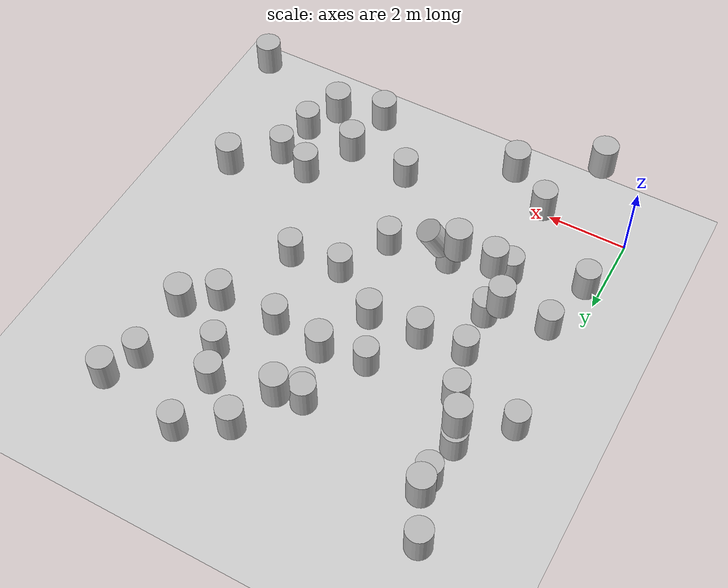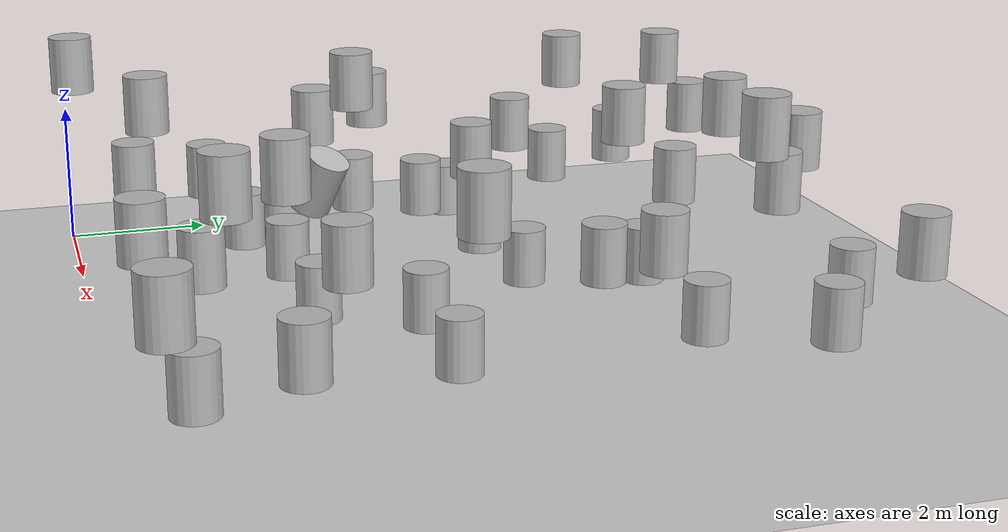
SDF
<sdf version="1.7">
 <world name="default">
  <light name="sun" type="directional">
   <pose>0 0 10 0 -0 0</pose>
   <diffuse>0.8 0.8 0.8 1</diffuse>
   <specular>0.2 0.2 0.2 1</specular>
   <attenuation>
    <range>1000</range>
    <constant>0.9</constant>
    <linear>0.01</linear>
    <quadratic>0.001</quadratic>
   </attenuation>
   <direction>-0.5 0.1 -0.9</direction>
   <spot><inner_angle>0</inner_angle><outer_angle>0</outer_angle><falloff>0</falloff></spot>
  </light>
  <model name="ground_plane">
   <static>1</static>
   <link name="link">
    <collision name="collision">
     <geometry><plane><normal>0 0 1</normal><size>100 100</size></plane></geometry>
     <surface><friction><ode><mu>100</mu><mu2>50</mu2></ode></friction></surface>
    </collision>
    <visual name="visual">
     <cast_shadows>0</cast_shadows>
     <geometry><plane><normal>0 0 1</normal><size>100 100</size></plane></geometry>
     <material>
      <script><uri>file://media/materials/scripts/gazebo.material</uri><name>Gazebo/Grey</name></script>
     </material>
    </visual>
   </link>
  </model>
  <gravity>0 0 -9.8</gravity>
  <magnetic_field>6e-06 2.3e-05 -4.2e-05</magnetic_field>
  <atmosphere type="adiabatic"/>
  <physics type="ode">
   <max_step_size>0.001</max_step_size>
   <real_time_factor>1</real_time_factor>
   <real_time_update_rate>1000</real_time_update_rate>
  </physics>
  <scene><ambient>0.4 0.4 0.4 1</ambient><background>0.7 0.7 0.7 1</background><shadows>1</shadows></scene>
  <spherical_coordinates>
   <surface_model>EARTH_WGS84</surface_model>
   <latitude_deg>0</latitude_deg>
   <longitude_deg>0</longitude_deg>
   <elevation>0</elevation>
   <heading_deg>0</heading_deg>
  </spherical_coordinates>
  <model name="obstacle_6">
   <link name="box_6">
    <inertial>
     <mass>1</mass>
     <inertia>
      <ixx>0.0741667</ixx>
      <ixy>0</ixy>
      <ixz>0</ixz>
      <iyy>0.0585417</iyy>
      <iyz>0</iyz>
      <izz>0.0260417</izz>
     </inertia>
    </inertial>
    <collision name="box_6_collision">
     <geometry><cylinder><length>0.8</length><radius>0.3</radius></cylinder></geometry>
     <surface>
      <contact><ode><kp>100000</kp><kd>100000</kd></ode></contact>
      <friction><ode><mu>0.1</mu><mu2>0.1</mu2><fdir1>1 0 0</fdir1></ode></friction>
     </surface>
    </collision>
    <visual name="box_6_visual">
     <geometry><cylinder><length>0.8</length><radius>0.3</radius></cylinder></geometry>
    </visual>
    <gravity>0</gravity>
   </link>
   <pose>2.10475 3.37825 2.18149 0 -0 0</pose>
  </model>
  <model name="obstacle_26">
   <link name="box_26">
    <inertial>
     <mass>1</mass>
     <inertia>
      <ixx>0.0741667</ixx>
      <ixy>0</ixy>
      <ixz>0</ixz>
      <iyy>0.0585417</iyy>
      <iyz>0</iyz>
      <izz>0.0260417</izz>
     </inertia>
    </inertial>
    <collision name="box_26_collision">
     <geometry><cylinder><length>0.8</length><radius>0.3</radius></cylinder></geometry>
     <surface>
      <contact><ode><kp>100000</kp><kd>100000</kd></ode></contact>
      <friction><ode><mu>0.1</mu><mu2>0.1</mu2><fdir1>1 0 0</fdir1></ode></friction>
     </surface>
    </collision>
    <visual name="box_26_visual">
     <geometry><cylinder><length>0.8</length><radius>0.3</radius></cylinder></geometry>
    </visual>
    <gravity>0</gravity>
   </link>
   <pose>0.901661 9.26718 2.48061 0 -0 0</pose>
  </model>
  <model name="obstacle_25">
   <link name="box_25">
    <inertial>
     <mass>1</mass>
     <inertia>
      <ixx>0.0741667</ixx>
      <ixy>0</ixy>
      <ixz>0</ixz>
      <iyy>0.0585417</iyy>
      <iyz>0</iyz>
      <izz>0.0260417</izz>
     </inertia>
    </inertial>
    <collision name="box_25_collision">
     <geometry><cylinder><length>0.8</length><radius>0.3</radius></cylinder></geometry>
     <surface>
      <contact><ode><kp>100000</kp><kd>100000</kd></ode></contact>
      <friction><ode><mu>0.1</mu><mu2>0.1</mu2><fdir1>1 0 0</fdir1></ode></friction>
     </surface>
    </collision>
    <visual name="box_25_visual">
     <geometry><cylinder><length>0.8</length><radius>0.3</radius></cylinder></geometry>
    </visual>
    <gravity>0</gravity>
   </link>
   <pose>7.25111 1.34775 2.71773 0 -0 0</pose>
  </model>
  <model name="obstacle_8">
   <link name="box_8">
    <inertial>
     <mass>1</mass>
     <inertia>
      <ixx>0.0741667</ixx>
      <ixy>0</ixy>
      <ixz>0</ixz>
      <iyy>0.0585417</iyy>
      <iyz>0</iyz>
      <izz>0.0260417</izz>
     </inertia>
    </inertial>
    <collision name="box_8_collision">
     <geometry><cylinder><length>0.8</length><radius>0.3</radius></cylinder></geometry>
     <surface>
      <contact><ode><kp>100000</kp><kd>100000</kd></ode></contact>
      <friction><ode><mu>0.1</mu><mu2>0.1</mu2><fdir1>1 0 0</fdir1></ode></friction>
     </surface>
    </collision>
    <visual name="box_8_visual">
     <geometry><cylinder><length>0.8</length><radius>0.3</radius></cylinder></geometry>
    </visual>
    <gravity>0</gravity>
   </link>
   <pose>5.08674 9.62647 2.12254 0 -0 0</pose>
  </model>
  <model name="obstacle_42">
   <link name="box_42">
    <inertial>
     <mass>1</mass>
     <inertia>
      <ixx>0.0741667</ixx>
      <ixy>0</ixy>
      <ixz>0</ixz>
      <iyy>0.0585417</iyy>
      <iyz>0</iyz>
      <izz>0.0260417</izz>
     </inertia>
    </inertial>
    <collision name="box_42_collision">
     <geometry><cylinder><length>0.8</length><radius>0.3</radius></cylinder></geometry>
     <surface>
      <contact><ode><kp>100000</kp><kd>100000</kd></ode></contact>
      <friction><ode><mu>0.1</mu><mu2>0.1</mu2><fdir1>1 0 0</fdir1></ode></friction>
     </surface>
    </collision>
    <visual name="box_42_visual">
     <geometry><cylinder><length>0.8</length><radius>0.3</radius></cylinder></geometry>
    </visual>
    <gravity>0</gravity>
   </link>
   <pose>1.96257 3.98736 1.11051 3.9e-05 6.6e-05 0.00014</pose>
  </model>
  <model name="obstacle_7">
   <link name="box_7">
    <inertial>
     <mass>1</mass>
     <inertia>
      <ixx>0.0741667</ixx>
      <ixy>0</ixy>
      <ixz>0</ixz>
      <iyy>0.0585417</iyy>
      <iyz>0</iyz>
      <izz>0.0260417</izz>
     </inertia>
    </inertial>
    <collision name="box_7_collision">
     <geometry><cylinder><length>0.8</length><radius>0.3</radius></cylinder></geometry>
     <surface>
      <contact><ode><kp>100000</kp><kd>100000</kd></ode></contact>
      <friction><ode><mu>0.1</mu><mu2>0.1</mu2><fdir1>1 0 0</fdir1></ode></friction>
     </surface>
    </collision>
    <visual name="box_7_visual">
     <geometry><cylinder><length>0.8</length><radius>0.3</radius></cylinder></geometry>
    </visual>
    <gravity>0</gravity>
   </link>
   <pose>7.27072 6.72703 1.57818 0 -0 0</pose>
  </model>
  <model name="obstacle_32">
   <link name="box_32">
    <inertial>
     <mass>1</mass>
     <inertia>
      <ixx>0.0741667</ixx>
      <ixy>0</ixy>
      <ixz>0</ixz>
      <iyy>0.0585417</iyy>
      <iyz>0</iyz>
      <izz>0.0260417</izz>
     </inertia>
    </inertial>
    <collision name="box_32_collision">
     <geometry><cylinder><length>0.8</length><radius>0.3</radius></cylinder></geometry>
     <surface>
      <contact><ode><kp>100000</kp><kd>100000</kd></ode></contact>
      <friction><ode><mu>0.1</mu><mu2>0.1</mu2><fdir1>1 0 0</fdir1></ode></friction>
     </surface>
    </collision>
    <visual name="box_32_visual">
     <geometry><cylinder><length>0.8</length><radius>0.3</radius></cylinder></geometry>
    </visual>
    <gravity>0</gravity>
   </link>
   <pose>2.73809 0.948197 2.65715 0 -0 0</pose>
  </model>
  <model name="obstacle_34">
   <link name="box_34">
    <inertial>
     <mass>1</mass>
     <inertia>
      <ixx>0.0741667</ixx>
      <ixy>0</ixy>
      <ixz>0</ixz>
      <iyy>0.0585417</iyy>
      <iyz>0</iyz>
      <izz>0.0260417</izz>
     </inertia>
    </inertial>
    <collision name="box_34_collision">
     <geometry><cylinder><length>0.8</length><radius>0.3</radius></cylinder></geometry>
     <surface>
      <contact><ode><kp>100000</kp><kd>100000</kd></ode></contact>
      <friction><ode><mu>0.1</mu><mu2>0.1</mu2><fdir1>1 0 0</fdir1></ode></friction>
     </surface>
    </collision>
    <visual name="box_34_visual">
     <geometry><cylinder><length>0.8</length><radius>0.3</radius></cylinder></geometry>
    </visual>
    <gravity>0</gravity>
   </link>
   <pose>7.09612 7.40446 0.550759 0 -0 0</pose>
  </model>
  <model name="obstacle_11">
   <link name="box_11">
    <inertial>
     <mass>1</mass>
     <inertia>
      <ixx>0.0741667</ixx>
      <ixy>0</ixy>
      <ixz>0</ixz>
      <iyy>0.0585417</iyy>
      <iyz>0</iyz>
      <izz>0.0260417</izz>
     </inertia>
    </inertial>
    <collision name="box_11_collision">
     <geometry><cylinder><length>0.8</length><radius>0.3</radius></cylinder></geometry>
     <surface>
      <contact><ode><kp>100000</kp><kd>100000</kd></ode></contact>
      <friction><ode><mu>0.1</mu><mu2>0.1</mu2><fdir1>1 0 0</fdir1></ode></friction>
     </surface>
    </collision>
    <visual name="box_11_visual">
     <geometry><cylinder><length>0.8</length><radius>0.3</radius></cylinder></geometry>
    </visual>
    <gravity>0</gravity>
   </link>
   <pose>6.40046 2.19597 2.63029 0 -0 0</pose>
  </model>
  <model name="obstacle_35">
   <link name="box_35">
    <inertial>
     <mass>1</mass>
     <inertia>
      <ixx>0.0741667</ixx>
      <ixy>0</ixy>
      <ixz>0</ixz>
      <iyy>0.0585417</iyy>
      <iyz>0</iyz>
      <izz>0.0260417</izz>
     </inertia>
    </inertial>
    <collision name="box_35_collision">
     <geometry><cylinder><length>0.8</length><radius>0.3</radius></cylinder></geometry>
     <surface>
      <contact><ode><kp>100000</kp><kd>100000</kd></ode></contact>
      <friction><ode><mu>0.1</mu><mu2>0.1</mu2><fdir1>1 0 0</fdir1></ode></friction>
     </surface>
    </collision>
    <visual name="box_35_visual">
     <geometry><cylinder><length>0.8</length><radius>0.3</radius></cylinder></geometry>
    </visual>
    <gravity>0</gravity>
   </link>
   <pose>1.93122 5.03207 0.959074 0 -0 0</pose>
  </model>
  <model name="obstacle_27">
   <link name="box_27">
    <inertial>
     <mass>1</mass>
     <inertia>
      <ixx>0.0741667</ixx>
      <ixy>0</ixy>
      <ixz>0</ixz>
      <iyy>0.0585417</iyy>
      <iyz>0</iyz>
      <izz>0.0260417</izz>
     </inertia>
    </inertial>
    <collision name="box_27_collision">
     <geometry><cylinder><length>0.8</length><radius>0.3</radius></cylinder></geometry>
     <surface>
      <contact><ode><kp>100000</kp><kd>100000</kd></ode></contact>
      <friction><ode><mu>0.1</mu><mu2>0.1</mu2><fdir1>1 0 0</fdir1></ode></friction>
     </surface>
    </collision>
    <visual name="box_27_visual">
     <geometry><cylinder><length>0.8</length><radius>0.3</radius></cylinder></geometry>
    </visual>
    <gravity>0</gravity>
   </link>
   <pose>1.43571 6.58573 1.70622 0 -0 0</pose>
  </model>
  <model name="obstacle_15">
   <link name="box_15">
    <inertial>
     <mass>1</mass>
     <inertia>
      <ixx>0.0741667</ixx>
      <ixy>0</ixy>
      <ixz>0</ixz>
      <iyy>0.0585417</iyy>
      <iyz>0</iyz>
      <izz>0.0260417</izz>
     </inertia>
    </inertial>
    <collision name="box_15_collision">
     <geometry><cylinder><length>0.8</length><radius>0.3</radius></cylinder></geometry>
     <surface>
      <contact><ode><kp>100000</kp><kd>100000</kd></ode></contact>
      <friction><ode><mu>0.1</mu><mu2>0.1</mu2><fdir1>1 0 0</fdir1></ode></friction>
     </surface>
    </collision>
    <visual name="box_15_visual">
     <geometry><cylinder><length>0.8</length><radius>0.3</radius></cylinder></geometry>
    </visual>
    <gravity>0</gravity>
   </link>
   <pose>1.13226 8.38937 1.33062 0 -0 0</pose>
  </model>
  <model name="obstacle_48">
   <link name="box_48">
    <inertial>
     <mass>1</mass>
     <inertia>
      <ixx>0.0741667</ixx>
      <ixy>0</ixy>
      <ixz>0</ixz>
      <iyy>0.0585417</iyy>
      <iyz>0</iyz>
      <izz>0.0260417</izz>
     </inertia>
    </inertial>
    <collision name="box_48_collision">
     <geometry><cylinder><length>0.8</length><radius>0.3</radius></cylinder></geometry>
     <surface>
      <contact><ode><kp>100000</kp><kd>100000</kd></ode></contact>
      <friction><ode><mu>0.1</mu><mu2>0.1</mu2><fdir1>1 0 0</fdir1></ode></friction>
     </surface>
    </collision>
    <visual name="box_48_visual">
     <geometry><cylinder><length>0.8</length><radius>0.3</radius></cylinder></geometry>
    </visual>
    <gravity>0</gravity>
   </link>
   <pose>2.04117 2.34147 0.695862 0 -0 0</pose>
  </model>
  <model name="obstacle_41">
   <link name="box_41">
    <inertial>
     <mass>1</mass>
     <inertia>
      <ixx>0.0741667</ixx>
      <ixy>0</ixy>
      <ixz>0</ixz>
      <iyy>0.0585417</iyy>
      <iyz>0</iyz>
      <izz>0.0260417</izz>
     </inertia>
    </inertial>
    <collision name="box_41_collision">
     <geometry><cylinder><length>0.8</length><radius>0.3</radius></cylinder></geometry>
     <surface>
      <contact><ode><kp>100000</kp><kd>100000</kd></ode></contact>
      <friction><ode><mu>0.1</mu><mu2>0.1</mu2><fdir1>1 0 0</fdir1></ode></friction>
     </surface>
    </collision>
    <visual name="box_41_visual">
     <geometry><cylinder><length>0.8</length><radius>0.3</radius></cylinder></geometry>
    </visual>
    <gravity>0</gravity>
   </link>
   <pose>1.98044 0.803897 1.53277 0 -0 0</pose>
  </model>
  <model name="obstacle_49">
   <link name="box_49">
    <inertial>
     <mass>1</mass>
     <inertia>
      <ixx>0.0741667</ixx>
      <ixy>0</ixy>
      <ixz>0</ixz>
      <iyy>0.0585417</iyy>
      <iyz>0</iyz>
      <izz>0.0260417</izz>
     </inertia>
    </inertial>
    <collision name="box_49_collision">
     <geometry><cylinder><length>0.8</length><radius>0.3</radius></cylinder></geometry>
     <surface>
      <contact><ode><kp>100000</kp><kd>100000</kd></ode></contact>
      <friction><ode><mu>0.1</mu><mu2>0.1</mu2><fdir1>1 0 0</fdir1></ode></friction>
     </surface>
    </collision>
    <visual name="box_49_visual">
     <geometry><cylinder><length>0.8</length><radius>0.3</radius></cylinder></geometry>
    </visual>
    <gravity>0</gravity>
   </link>
   <pose>8.34989 9.68227 1.61921 0 -0 0</pose>
  </model>
  <model name="obstacle_16">
   <link name="box_16">
    <inertial>
     <mass>1</mass>
     <inertia>
      <ixx>0.0741667</ixx>
      <ixy>0</ixy>
      <ixz>0</ixz>
      <iyy>0.0585417</iyy>
      <iyz>0</iyz>
      <izz>0.0260417</izz>
     </inertia>
    </inertial>
    <collision name="box_16_collision">
     <geometry><cylinder><length>0.8</length><radius>0.3</radius></cylinder></geometry>
     <surface>
      <contact><ode><kp>100000</kp><kd>100000</kd></ode></contact>
      <friction><ode><mu>0.1</mu><mu2>0.1</mu2><fdir1>1 0 0</fdir1></ode></friction>
     </surface>
    </collision>
    <visual name="box_16_visual">
     <geometry><cylinder><length>0.8</length><radius>0.3</radius></cylinder></geometry>
    </visual>
    <gravity>0</gravity>
   </link>
   <pose>8.6597 3.97956 2.70515 0 -0 0</pose>
  </model>
  <model name="obstacle_21">
   <link name="box_21">
    <inertial>
     <mass>1</mass>
     <inertia>
      <ixx>0.0741667</ixx>
      <ixy>0</ixy>
      <ixz>0</ixz>
      <iyy>0.0585417</iyy>
      <iyz>0</iyz>
      <izz>0.0260417</izz>
     </inertia>
    </inertial>
    <collision name="box_21_collision">
     <geometry><cylinder><length>0.8</length><radius>0.3</radius></cylinder></geometry>
     <surface>
      <contact><ode><kp>100000</kp><kd>100000</kd></ode></contact>
      <friction><ode><mu>0.1</mu><mu2>0.1</mu2><fdir1>1 0 0</fdir1></ode></friction>
     </surface>
    </collision>
    <visual name="box_21_visual">
     <geometry><cylinder><length>0.8</length><radius>0.3</radius></cylinder></geometry>
    </visual>
    <gravity>0</gravity>
   </link>
   <pose>2.83813 3.79717 2.83813 0 -0 0</pose>
  </model>
  <model name="obstacle_13">
   <link name="box_13">
    <inertial>
     <mass>1</mass>
     <inertia>
      <ixx>0.0741667</ixx>
      <ixy>0</ixy>
      <ixz>0</ixz>
      <iyy>0.0585417</iyy>
      <iyz>0</iyz>
      <izz>0.0260417</izz>
     </inertia>
    </inertial>
    <collision name="box_13_collision">
     <geometry><cylinder><length>0.8</length><radius>0.3</radius></cylinder></geometry>
     <surface>
      <contact><ode><kp>100000</kp><kd>100000</kd></ode></contact>
      <friction><ode><mu>0.1</mu><mu2>0.1</mu2><fdir1>1 0 0</fdir1></ode></friction>
     </surface>
    </collision>
    <visual name="box_13_visual">
     <geometry><cylinder><length>0.8</length><radius>0.3</radius></cylinder></geometry>
    </visual>
    <gravity>0</gravity>
   </link>
   <pose>4.28202 8.1303 1.5296 0 -0 0</pose>
  </model>
  <model name="obstacle_47">
   <link name="box_47">
    <inertial>
     <mass>1</mass>
     <inertia>
      <ixx>0.0741667</ixx>
      <ixy>0</ixy>
      <ixz>0</ixz>
      <iyy>0.0585417</iyy>
      <iyz>0</iyz>
      <izz>0.0260417</izz>
     </inertia>
    </inertial>
    <collision name="box_47_collision">
     <geometry><cylinder><length>0.8</length><radius>0.3</radius></cylinder></geometry>
     <surface>
      <contact><ode><kp>100000</kp><kd>100000</kd></ode></contact>
      <friction><ode><mu>0.1</mu><mu2>0.1</mu2><fdir1>1 0 0</fdir1></ode></friction>
     </surface>
    </collision>
    <visual name="box_47_visual">
     <geometry><cylinder><length>0.8</length><radius>0.3</radius></cylinder></geometry>
    </visual>
    <gravity>0</gravity>
   </link>
   <pose>0.970695 0.076178 2.90048 0 -0 0</pose>
  </model>
  <model name="obstacle_30">
   <link name="box_30">
    <inertial>
     <mass>1</mass>
     <inertia>
      <ixx>0.0741667</ixx>
      <ixy>0</ixy>
      <ixz>0</ixz>
      <iyy>0.0585417</iyy>
      <iyz>0</iyz>
      <izz>0.0260417</izz>
     </inertia>
    </inertial>
    <collision name="box_30_collision">
     <geometry><cylinder><length>0.8</length><radius>0.3</radius></cylinder></geometry>
     <surface>
      <contact><ode><kp>100000</kp><kd>100000</kd></ode></contact>
      <friction><ode><mu>0.1</mu><mu2>0.1</mu2><fdir1>1 0 0</fdir1></ode></friction>
     </surface>
    </collision>
    <visual name="box_30_visual">
     <geometry><cylinder><length>0.8</length><radius>0.3</radius></cylinder></geometry>
    </visual>
    <gravity>0</gravity>
   </link>
   <pose>6.70179 9.65645 0.685877 0 -0 0</pose>
  </model>
  <model name="obstacle_17">
   <link name="box_17">
    <inertial>
     <mass>1</mass>
     <inertia>
      <ixx>0.0741667</ixx>
      <ixy>0</ixy>
      <ixz>0</ixz>
      <iyy>0.0585417</iyy>
      <iyz>0</iyz>
      <izz>0.0260417</izz>
     </inertia>
    </inertial>
    <collision name="box_17_collision">
     <geometry><cylinder><length>0.8</length><radius>0.3</radius></cylinder></geometry>
     <surface>
      <contact><ode><kp>100000</kp><kd>100000</kd></ode></contact>
      <friction><ode><mu>0.1</mu><mu2>0.1</mu2><fdir1>1 0 0</fdir1></ode></friction>
     </surface>
    </collision>
    <visual name="box_17_visual">
     <geometry><cylinder><length>0.8</length><radius>0.3</radius></cylinder></geometry>
    </visual>
    <gravity>0</gravity>
   </link>
   <pose>1.06977 7.33088 1.06781 2.9e-05 7.9e-05 0.000131</pose>
  </model>
  <model name="obstacle_14">
   <link name="box_14">
    <inertial>
     <mass>1</mass>
     <inertia>
      <ixx>0.0741667</ixx>
      <ixy>0</ixy>
      <ixz>0</ixz>
      <iyy>0.0585417</iyy>
      <iyz>0</iyz>
      <izz>0.0260417</izz>
     </inertia>
    </inertial>
    <collision name="box_14_collision">
     <geometry><cylinder><length>0.8</length><radius>0.3</radius></cylinder></geometry>
     <surface>
      <contact><ode><kp>100000</kp><kd>100000</kd></ode></contact>
      <friction><ode><mu>0.1</mu><mu2>0.1</mu2><fdir1>1 0 0</fdir1></ode></friction>
     </surface>
    </collision>
    <visual name="box_14_visual">
     <geometry><cylinder><length>0.8</length><radius>0.3</radius></cylinder></geometry>
    </visual>
    <gravity>0</gravity>
   </link>
   <pose>0.597966 9.88818 1.57083 0 -0 0</pose>
  </model>
  <model name="obstacle_37">
   <link name="box_37">
    <inertial>
     <mass>1</mass>
     <inertia>
      <ixx>0.0741667</ixx>
      <ixy>0</ixy>
      <ixz>0</ixz>
      <iyy>0.0585417</iyy>
      <iyz>0</iyz>
      <izz>0.0260417</izz>
     </inertia>
    </inertial>
    <collision name="box_37_collision">
     <geometry><cylinder><length>0.8</length><radius>0.3</radius></cylinder></geometry>
     <surface>
      <contact><ode><kp>100000</kp><kd>100000</kd></ode></contact>
      <friction><ode><mu>0.1</mu><mu2>0.1</mu2><fdir1>1 0 0</fdir1></ode></friction>
     </surface>
    </collision>
    <visual name="box_37_visual">
     <geometry><cylinder><length>0.8</length><radius>0.3</radius></cylinder></geometry>
    </visual>
    <gravity>0</gravity>
   </link>
   <pose>6.04683 6.41001 1.06533 3e-05 7.8e-05 0.000131</pose>
  </model>
  <model name="obstacle_18">
   <link name="box_18">
    <inertial>
     <mass>1</mass>
     <inertia>
      <ixx>0.0741667</ixx>
      <ixy>0</ixy>
      <ixz>0</ixz>
      <iyy>0.0585417</iyy>
      <iyz>0</iyz>
      <izz>0.0260417</izz>
     </inertia>
    </inertial>
    <collision name="box_18_collision">
     <geometry><cylinder><length>0.8</length><radius>0.3</radius></cylinder></geometry>
     <surface>
      <contact><ode><kp>100000</kp><kd>100000</kd></ode></contact>
      <friction><ode><mu>0.1</mu><mu2>0.1</mu2><fdir1>1 0 0</fdir1></ode></friction>
     </surface>
    </collision>
    <visual name="box_18_visual">
     <geometry><cylinder><length>0.8</length><radius>0.3</radius></cylinder></geometry>
    </visual>
    <gravity>0</gravity>
   </link>
   <pose>4.54348 8.73215 2.54913 0 -0 0</pose>
  </model>
  <model name="obstacle_2">
   <link name="box_2">
    <inertial>
     <mass>1</mass>
     <inertia>
      <ixx>0.0741667</ixx>
      <ixy>0</ixy>
      <ixz>0</ixz>
      <iyy>0.0585417</iyy>
      <iyz>0</iyz>
      <izz>0.0260417</izz>
     </inertia>
    </inertial>
    <collision name="box_2_collision">
     <geometry><cylinder><length>0.8</length><radius>0.3</radius></cylinder></geometry>
     <surface>
      <contact><ode><kp>100000</kp><kd>100000</kd></ode></contact>
      <friction><ode><mu>0.1</mu><mu2>0.1</mu2><fdir1>1 0 0</fdir1></ode></friction>
     </surface>
    </collision>
    <visual name="box_2_visual">
     <geometry><cylinder><length>0.8</length><radius>0.3</radius></cylinder></geometry>
    </visual>
    <gravity>0</gravity>
   </link>
   <pose>4.25714 5.26091 1.07553 0 -0 0</pose>
  </model>
  <model name="obstacle_36">
   <link name="box_36">
    <inertial>
     <mass>1</mass>
     <inertia>
      <ixx>0.0741667</ixx>
      <ixy>0</ixy>
      <ixz>0</ixz>
      <iyy>0.0585417</iyy>
      <iyz>0</iyz>
      <izz>0.0260417</izz>
     </inertia>
    </inertial>
    <collision name="box_36_collision">
     <geometry><cylinder><length>0.8</length><radius>0.3</radius></cylinder></geometry>
     <surface>
      <contact><ode><kp>100000</kp><kd>100000</kd></ode></contact>
      <friction><ode><mu>0.1</mu><mu2>0.1</mu2><fdir1>1 0 0</fdir1></ode></friction>
     </surface>
    </collision>
    <visual name="box_36_visual">
     <geometry><cylinder><length>0.8</length><radius>0.3</radius></cylinder></geometry>
    </visual>
    <gravity>0</gravity>
   </link>
   <pose>0.95912 7.5857 2.54407 0 -0 0</pose>
  </model>
  <model name="obstacle_38">
   <link name="box_38">
    <inertial>
     <mass>1</mass>
     <inertia>
      <ixx>0.0741667</ixx>
      <ixy>0</ixy>
      <ixz>0</ixz>
      <iyy>0.0585417</iyy>
      <iyz>0</iyz>
      <izz>0.0260417</izz>
     </inertia>
    </inertial>
    <collision name="box_38_collision">
     <geometry><cylinder><length>0.8</length><radius>0.3</radius></cylinder></geometry>
     <surface>
      <contact><ode><kp>100000</kp><kd>100000</kd></ode></contact>
      <friction><ode><mu>0.1</mu><mu2>0.1</mu2><fdir1>1 0 0</fdir1></ode></friction>
     </surface>
    </collision>
    <visual name="box_38_visual">
     <geometry><cylinder><length>0.8</length><radius>0.3</radius></cylinder></geometry>
    </visual>
    <gravity>0</gravity>
   </link>
   <pose>8.52727 0.756138 0.902036 0 -0 0</pose>
  </model>
  <model name="obstacle_40">
   <link name="box_40">
    <inertial>
     <mass>1</mass>
     <inertia>
      <ixx>0.0741667</ixx>
      <ixy>0</ixy>
      <ixz>0</ixz>
      <iyy>0.0585417</iyy>
      <iyz>0</iyz>
      <izz>0.0260417</izz>
     </inertia>
    </inertial>
    <collision name="box_40_collision">
     <geometry><cylinder><length>0.8</length><radius>0.3</radius></cylinder></geometry>
     <surface>
      <contact><ode><kp>100000</kp><kd>100000</kd></ode></contact>
      <friction><ode><mu>0.1</mu><mu2>0.1</mu2><fdir1>1 0 0</fdir1></ode></friction>
     </surface>
    </collision>
    <visual name="box_40_visual">
     <geometry><cylinder><length>0.8</length><radius>0.3</radius></cylinder></geometry>
    </visual>
    <gravity>0</gravity>
   </link>
   <pose>3.50293 2.71091 0.67372 -0.005779 -0.001475 0.002055</pose>
  </model>
  <model name="obstacle_1">
   <link name="box_1">
    <inertial>
     <mass>1</mass>
     <inertia>
      <ixx>0.0741667</ixx>
      <ixy>0</ixy>
      <ixz>0</ixz>
      <iyy>0.0585417</iyy>
      <iyz>0</iyz>
      <izz>0.0260417</izz>
     </inertia>
    </inertial>
    <collision name="box_1_collision">
     <geometry><cylinder><length>0.8</length><radius>0.3</radius></cylinder></geometry>
     <surface>
      <contact><ode><kp>100000</kp><kd>100000</kd></ode></contact>
      <friction><ode><mu>0.1</mu><mu2>0.1</mu2><fdir1>1 0 0</fdir1></ode></friction>
     </surface>
    </collision>
    <visual name="box_1_visual">
     <geometry><cylinder><length>0.8</length><radius>0.3</radius></cylinder></geometry>
    </visual>
    <gravity>0</gravity>
   </link>
   <pose>5.04798 2.83231 0.55562 0 -0 0</pose>
  </model>
  <model name="obstacle_9">
   <link name="box_9">
    <inertial>
     <mass>1</mass>
     <inertia>
      <ixx>0.0741667</ixx>
      <ixy>0</ixy>
      <ixz>0</ixz>
      <iyy>0.0585417</iyy>
      <iyz>0</iyz>
      <izz>0.0260417</izz>
     </inertia>
    </inertial>
    <collision name="box_9_collision">
     <geometry><cylinder><length>0.8</length><radius>0.3</radius></cylinder></geometry>
     <surface>
      <contact><ode><kp>100000</kp><kd>100000</kd></ode></contact>
      <friction><ode><mu>0.1</mu><mu2>0.1</mu2><fdir1>1 0 0</fdir1></ode></friction>
     </surface>
    </collision>
    <visual name="box_9_visual">
     <geometry><cylinder><length>0.8</length><radius>0.3</radius></cylinder></geometry>
    </visual>
    <gravity>0</gravity>
   </link>
   <pose>6.15345 8.80025 1.88361 0 -0 0</pose>
  </model>
  <model name="obstacle_22">
   <link name="box_22">
    <inertial>
     <mass>1</mass>
     <inertia>
      <ixx>0.0741667</ixx>
      <ixy>0</ixy>
      <ixz>0</ixz>
      <iyy>0.0585417</iyy>
      <iyz>0</iyz>
      <izz>0.0260417</izz>
     </inertia>
    </inertial>
    <collision name="box_22_collision">
     <geometry><cylinder><length>0.8</length><radius>0.3</radius></cylinder></geometry>
     <surface>
      <contact><ode><kp>100000</kp><kd>100000</kd></ode></contact>
      <friction><ode><mu>0.1</mu><mu2>0.1</mu2><fdir1>1 0 0</fdir1></ode></friction>
     </surface>
    </collision>
    <visual name="box_22_visual">
     <geometry><cylinder><length>0.8</length><radius>0.3</radius></cylinder></geometry>
    </visual>
    <gravity>0</gravity>
   </link>
   <pose>0.666643 3.12651 0.410731 0 -0 0</pose>
  </model>
  <model name="obstacle_12">
   <link name="box_12">
    <inertial>
     <mass>1</mass>
     <inertia>
      <ixx>0.0741667</ixx>
      <ixy>0</ixy>
      <ixz>0</ixz>
      <iyy>0.0585417</iyy>
      <iyz>0</iyz>
      <izz>0.0260417</izz>
     </inertia>
    </inertial>
    <collision name="box_12_collision">
     <geometry><cylinder><length>0.8</length><radius>0.3</radius></cylinder></geometry>
     <surface>
      <contact><ode><kp>100000</kp><kd>100000</kd></ode></contact>
      <friction><ode><mu>0.1</mu><mu2>0.1</mu2><fdir1>1 0 0</fdir1></ode></friction>
     </surface>
    </collision>
    <visual name="box_12_visual">
     <geometry><cylinder><length>0.8</length><radius>0.3</radius></cylinder></geometry>
    </visual>
    <gravity>0</gravity>
   </link>
   <pose>8.553 1.97203 1.14318 0 -0 0</pose>
  </model>
  <model name="obstacle_29">
   <link name="box_29">
    <inertial>
     <mass>1</mass>
     <inertia>
      <ixx>0.0741667</ixx>
      <ixy>0</ixy>
      <ixz>0</ixz>
      <iyy>0.0585417</iyy>
      <iyz>0</iyz>
      <izz>0.0260417</izz>
     </inertia>
    </inertial>
    <collision name="box_29_collision">
     <geometry><cylinder><length>0.8</length><radius>0.3</radius></cylinder></geometry>
     <surface>
      <contact><ode><kp>100000</kp><kd>100000</kd></ode></contact>
      <friction><ode><mu>0.1</mu><mu2>0.1</mu2><fdir1>1 0 0</fdir1></ode></friction>
     </surface>
    </collision>
    <visual name="box_29_visual">
     <geometry><cylinder><length>0.8</length><radius>0.3</radius></cylinder></geometry>
    </visual>
    <gravity>0</gravity>
   </link>
   <pose>9.85049 0.342385 2.27792 0 -0 0</pose>
  </model>
  <model name="obstacle_4">
   <link name="box_4">
    <inertial>
     <mass>1</mass>
     <inertia>
      <ixx>0.0741667</ixx>
      <ixy>0</ixy>
      <ixz>0</ixz>
      <iyy>0.0585417</iyy>
      <iyz>0</iyz>
      <izz>0.0260417</izz>
     </inertia>
    </inertial>
    <collision name="box_4_collision">
     <geometry><cylinder><length>0.8</length><radius>0.3</radius></cylinder></geometry>
     <surface>
      <contact><ode><kp>100000</kp><kd>100000</kd></ode></contact>
      <friction><ode><mu>0.1</mu><mu2>0.1</mu2><fdir1>1 0 0</fdir1></ode></friction>
     </surface>
    </collision>
    <visual name="box_4_visual">
     <geometry><cylinder><length>0.8</length><radius>0.3</radius></cylinder></geometry>
    </visual>
    <gravity>0</gravity>
   </link>
   <pose>7.02211 4.17757 0.399509 -9e-06 2.6e-05 2e-06</pose>
  </model>
  <model name="obstacle_5">
   <link name="box_5">
    <inertial>
     <mass>1</mass>
     <inertia>
      <ixx>0.0741667</ixx>
      <ixy>0</ixy>
      <ixz>0</ixz>
      <iyy>0.0585417</iyy>
      <iyz>0</iyz>
      <izz>0.0260417</izz>
     </inertia>
    </inertial>
    <collision name="box_5_collision">
     <geometry><cylinder><length>0.8</length><radius>0.3</radius></cylinder></geometry>
     <surface>
      <contact><ode><kp>100000</kp><kd>100000</kd></ode></contact>
      <friction><ode><mu>0.1</mu><mu2>0.1</mu2><fdir1>1 0 0</fdir1></ode></friction>
     </surface>
    </collision>
    <visual name="box_5_visual">
     <geometry><cylinder><length>0.8</length><radius>0.3</radius></cylinder></geometry>
    </visual>
    <gravity>0</gravity>
   </link>
   <pose>0.224359 5.89296 0.388548 -1.7e-05 4.4e-05 -0</pose>
  </model>
  <model name="obstacle_31">
   <link name="box_31">
    <inertial>
     <mass>1</mass>
     <inertia>
      <ixx>0.0741667</ixx>
      <ixy>0</ixy>
      <ixz>0</ixz>
      <iyy>0.0585417</iyy>
      <iyz>0</iyz>
      <izz>0.0260417</izz>
     </inertia>
    </inertial>
    <collision name="box_31_collision">
     <geometry><cylinder><length>0.8</length><radius>0.3</radius></cylinder></geometry>
     <surface>
      <contact><ode><kp>100000</kp><kd>100000</kd></ode></contact>
      <friction><ode><mu>0.1</mu><mu2>0.1</mu2><fdir1>1 0 0</fdir1></ode></friction>
     </surface>
    </collision>
    <visual name="box_31_visual">
     <geometry><cylinder><length>0.8</length><radius>0.3</radius></cylinder></geometry>
    </visual>
    <gravity>0</gravity>
   </link>
   <pose>2.83277 5.55584 1.70337 0 -0 0</pose>
  </model>
  <model name="obstacle_33">
   <link name="box_33">
    <inertial>
     <mass>1</mass>
     <inertia>
      <ixx>0.0741667</ixx>
      <ixy>0</ixy>
      <ixz>0</ixz>
      <iyy>0.0585417</iyy>
      <iyz>0</iyz>
      <izz>0.0260417</izz>
     </inertia>
    </inertial>
    <collision name="box_33_collision">
     <geometry><cylinder><length>0.8</length><radius>0.3</radius></cylinder></geometry>
     <surface>
      <contact><ode><kp>100000</kp><kd>100000</kd></ode></contact>
      <friction><ode><mu>0.1</mu><mu2>0.1</mu2><fdir1>1 0 0</fdir1></ode></friction>
     </surface>
    </collision>
    <visual name="box_33_visual">
     <geometry><cylinder><length>0.8</length><radius>0.3</radius></cylinder></geometry>
    </visual>
    <gravity>0</gravity>
   </link>
   <pose>0.270458 2.05686 0.989576 0 -0 0</pose>
  </model>
  <model name="obstacle_28">
   <link name="box_28">
    <inertial>
     <mass>1</mass>
     <inertia>
      <ixx>0.0741667</ixx>
      <ixy>0</ixy>
      <ixz>0</ixz>
      <iyy>0.0585417</iyy>
      <iyz>0</iyz>
      <izz>0.0260417</izz>
     </inertia>
    </inertial>
    <collision name="box_28_collision">
     <geometry><cylinder><length>0.8</length><radius>0.3</radius></cylinder></geometry>
     <surface>
      <contact><ode><kp>100000</kp><kd>100000</kd></ode></contact>
      <friction><ode><mu>0.1</mu><mu2>0.1</mu2><fdir1>1 0 0</fdir1></ode></friction>
     </surface>
    </collision>
    <visual name="box_28_visual">
     <geometry><cylinder><length>0.8</length><radius>0.3</radius></cylinder></geometry>
    </visual>
    <gravity>0</gravity>
   </link>
   <pose>4.31048 7.32357 2.45907 0 -0 0</pose>
  </model>
  <model name="obstacle_46">
   <link name="box_46">
    <inertial>
     <mass>1</mass>
     <inertia>
      <ixx>0.0741667</ixx>
      <ixy>0</ixy>
      <ixz>0</ixz>
      <iyy>0.0585417</iyy>
      <iyz>0</iyz>
      <izz>0.0260417</izz>
     </inertia>
    </inertial>
    <collision name="box_46_collision">
     <geometry><cylinder><length>0.8</length><radius>0.3</radius></cylinder></geometry>
     <surface>
      <contact><ode><kp>100000</kp><kd>100000</kd></ode></contact>
      <friction><ode><mu>0.1</mu><mu2>0.1</mu2><fdir1>1 0 0</fdir1></ode></friction>
     </surface>
    </collision>
    <visual name="box_46_visual">
     <geometry><cylinder><length>0.8</length><radius>0.3</radius></cylinder></geometry>
    </visual>
    <gravity>0</gravity>
   </link>
   <pose>7.28572 8.00771 2.9573 0 -0 0</pose>
  </model>
  <model name="obstacle_10">
   <link name="box_10">
    <inertial>
     <mass>1</mass>
     <inertia>
      <ixx>0.0741667</ixx>
      <ixy>0</ixy>
      <ixz>0</ixz>
      <iyy>0.0585417</iyy>
      <iyz>0</iyz>
      <izz>0.0260417</izz>
     </inertia>
    </inertial>
    <collision name="box_10_collision">
     <geometry><cylinder><length>0.8</length><radius>0.3</radius></cylinder></geometry>
     <surface>
      <contact><ode><kp>100000</kp><kd>100000</kd></ode></contact>
      <friction><ode><mu>0.1</mu><mu2>0.1</mu2><fdir1>1 0 0</fdir1></ode></friction>
     </surface>
    </collision>
    <visual name="box_10_visual">
     <geometry><cylinder><length>0.8</length><radius>0.3</radius></cylinder></geometry>
    </visual>
    <gravity>0</gravity>
   </link>
   <pose>7.39161 2.71733 1.82655 0 -0 0</pose>
  </model>
  <model name="obstacle_45">
   <link name="box_45">
    <inertial>
     <mass>1</mass>
     <inertia>
      <ixx>0.0741667</ixx>
      <ixy>0</ixy>
      <ixz>0</ixz>
      <iyy>0.0585417</iyy>
      <iyz>0</iyz>
      <izz>0.0260417</izz>
     </inertia>
    </inertial>
    <collision name="box_45_collision">
     <geometry><cylinder><length>0.8</length><radius>0.3</radius></cylinder></geometry>
     <surface>
      <contact><ode><kp>100000</kp><kd>100000</kd></ode></contact>
      <friction><ode><mu>0.1</mu><mu2>0.1</mu2><fdir1>1 0 0</fdir1></ode></friction>
     </surface>
    </collision>
    <visual name="box_45_visual">
     <geometry><cylinder><length>0.8</length><radius>0.3</radius></cylinder></geometry>
    </visual>
    <gravity>0</gravity>
   </link>
   <pose>6.48141 0.460391 2.02004 0 -0 0</pose>
  </model>
  <model name="obstacle_3">
   <link name="box_3">
    <inertial>
     <mass>1</mass>
     <inertia>
      <ixx>0.0741667</ixx>
      <ixy>0</ixy>
      <ixz>0</ixz>
      <iyy>0.0585417</iyy>
      <iyz>0</iyz>
      <izz>0.0260417</izz>
     </inertia>
    </inertial>
    <collision name="box_3_collision">
     <geometry><cylinder><length>0.8</length><radius>0.3</radius></cylinder></geometry>
     <surface>
      <contact><ode><kp>100000</kp><kd>100000</kd></ode></contact>
      <friction><ode><mu>0.1</mu><mu2>0.1</mu2><fdir1>1 0 0</fdir1></ode></friction>
     </surface>
    </collision>
    <visual name="box_3_visual">
     <geometry><cylinder><length>0.8</length><radius>0.3</radius></cylinder></geometry>
    </visual>
    <gravity>0</gravity>
   </link>
   <pose>1.5033 4.31844 2.2533 0 -0 0</pose>
  </model>
  <model name="obstacle_39">
   <link name="box_39">
    <inertial>
     <mass>1</mass>
     <inertia>
      <ixx>0.0741667</ixx>
      <ixy>0</ixy>
      <ixz>0</ixz>
      <iyy>0.0585417</iyy>
      <iyz>0</iyz>
      <izz>0.0260417</izz>
     </inertia>
    </inertial>
    <collision name="box_39_collision">
     <geometry><cylinder><length>0.8</length><radius>0.3</radius></cylinder></geometry>
     <surface>
      <contact><ode><kp>100000</kp><kd>100000</kd></ode></contact>
      <friction><ode><mu>0.1</mu><mu2>0.1</mu2><fdir1>1 0 0</fdir1></ode></friction>
     </surface>
    </collision>
    <visual name="box_39_visual">
     <geometry><cylinder><length>0.8</length><radius>0.3</radius></cylinder></geometry>
    </visual>
    <gravity>0</gravity>
   </link>
   <pose>3.91353 6.03018 0.39739 -2e-06 8e-06 1e-06</pose>
  </model>
  <model name="obstacle_44">
   <link name="box_44">
    <inertial>
     <mass>1</mass>
     <inertia>
      <ixx>0.0741667</ixx>
      <ixy>0</ixy>
      <ixz>0</ixz>
      <iyy>0.0585417</iyy>
      <iyz>0</iyz>
      <izz>0.0260417</izz>
     </inertia>
    </inertial>
    <collision name="box_44_collision">
     <geometry><cylinder><length>0.8</length><radius>0.3</radius></cylinder></geometry>
     <surface>
      <contact><ode><kp>100000</kp><kd>100000</kd></ode></contact>
      <friction><ode><mu>0.1</mu><mu2>0.1</mu2><fdir1>1 0 0</fdir1></ode></friction>
     </surface>
    </collision>
    <visual name="box_44_visual">
     <geometry><cylinder><length>0.8</length><radius>0.3</radius></cylinder></geometry>
    </visual>
    <gravity>0</gravity>
   </link>
   <pose>4.70332 7.51793 0.543904 0 -0 0</pose>
  </model>
  <model name="obstacle_23">
   <link name="box_23">
    <inertial>
     <mass>1</mass>
     <inertia>
      <ixx>0.0741667</ixx>
      <ixy>0</ixy>
      <ixz>0</ixz>
      <iyy>0.0585417</iyy>
      <iyz>0</iyz>
      <izz>0.0260417</izz>
     </inertia>
    </inertial>
    <collision name="box_23_collision">
     <geometry><cylinder><length>0.8</length><radius>0.3</radius></cylinder></geometry>
     <surface>
      <contact><ode><kp>100000</kp><kd>100000</kd></ode></contact>
      <friction><ode><mu>0.1</mu><mu2>0.1</mu2><fdir1>1 0 0</fdir1></ode></friction>
     </surface>
    </collision>
    <visual name="box_23_visual">
     <geometry><cylinder><length>0.8</length><radius>0.3</radius></cylinder></geometry>
    </visual>
    <gravity>0</gravity>
   </link>
   <pose>5.43356 1.27989 1.28826 0 -0 0</pose>
  </model>
  <model name="obstacle_50">
   <link name="box_50">
    <inertial>
     <mass>1</mass>
     <inertia>
      <ixx>0.0741667</ixx>
      <ixy>0</ixy>
      <ixz>0</ixz>
      <iyy>0.0585417</iyy>
      <iyz>0</iyz>
      <izz>0.0260417</izz>
     </inertia>
    </inertial>
    <collision name="box_50_collision">
     <geometry><cylinder><length>0.8</length><radius>0.3</radius></cylinder></geometry>
     <surface>
      <contact><ode><kp>100000</kp><kd>100000</kd></ode></contact>
      <friction><ode><mu>0.1</mu><mu2>0.1</mu2><fdir1>1 0 0</fdir1></ode></friction>
     </surface>
    </collision>
    <visual name="box_50_visual">
     <geometry><cylinder><length>0.8</length><radius>0.3</radius></cylinder></geometry>
    </visual>
    <gravity>0</gravity>
   </link>
   <pose>3.68935 3.1289 1.62888 -0.336489 0.329182 -0.07506</pose>
  </model>
  <model name="obstacle_43">
   <link name="box_43">
    <inertial>
     <mass>1</mass>
     <inertia>
      <ixx>0.0741667</ixx>
      <ixy>0</ixy>
      <ixz>0</ixz>
      <iyy>0.0585417</iyy>
      <iyz>0</iyz>
      <izz>0.0260417</izz>
     </inertia>
    </inertial>
    <collision name="box_43_collision">
     <geometry><cylinder><length>0.8</length><radius>0.3</radius></cylinder></geometry>
     <surface>
      <contact><ode><kp>100000</kp><kd>100000</kd></ode></contact>
      <friction><ode><mu>0.1</mu><mu2>0.1</mu2><fdir1>1 0 0</fdir1></ode></friction>
     </surface>
    </collision>
    <visual name="box_43_visual">
     <geometry><cylinder><length>0.8</length><radius>0.3</radius></cylinder></geometry>
    </visual>
    <gravity>0</gravity>
   </link>
   <pose>8.37722 8.54956 0.838708 0 -0 0</pose>
  </model>
  <model name="obstacle_24">
   <link name="box_24">
    <inertial>
     <mass>1</mass>
     <inertia>
      <ixx>0.0741667</ixx>
      <ixy>0</ixy>
      <ixz>0</ixz>
      <iyy>0.0585417</iyy>
      <iyz>0</iyz>
      <izz>0.0260417</izz>
     </inertia>
    </inertial>
    <collision name="box_24_collision">
     <geometry><cylinder><length>0.8</length><radius>0.3</radius></cylinder></geometry>
     <surface>
      <contact><ode><kp>100000</kp><kd>100000</kd></ode></contact>
      <friction><ode><mu>0.1</mu><mu2>0.1</mu2><fdir1>1 0 0</fdir1></ode></friction>
     </surface>
    </collision>
    <visual name="box_24_visual">
     <geometry><cylinder><length>0.8</length><radius>0.3</radius></cylinder></geometry>
    </visual>
    <gravity>0</gravity>
   </link>
   <pose>5.68506 4.11132 0.552661 0 -0 0</pose>
  </model>
 </world>
</sdf>
